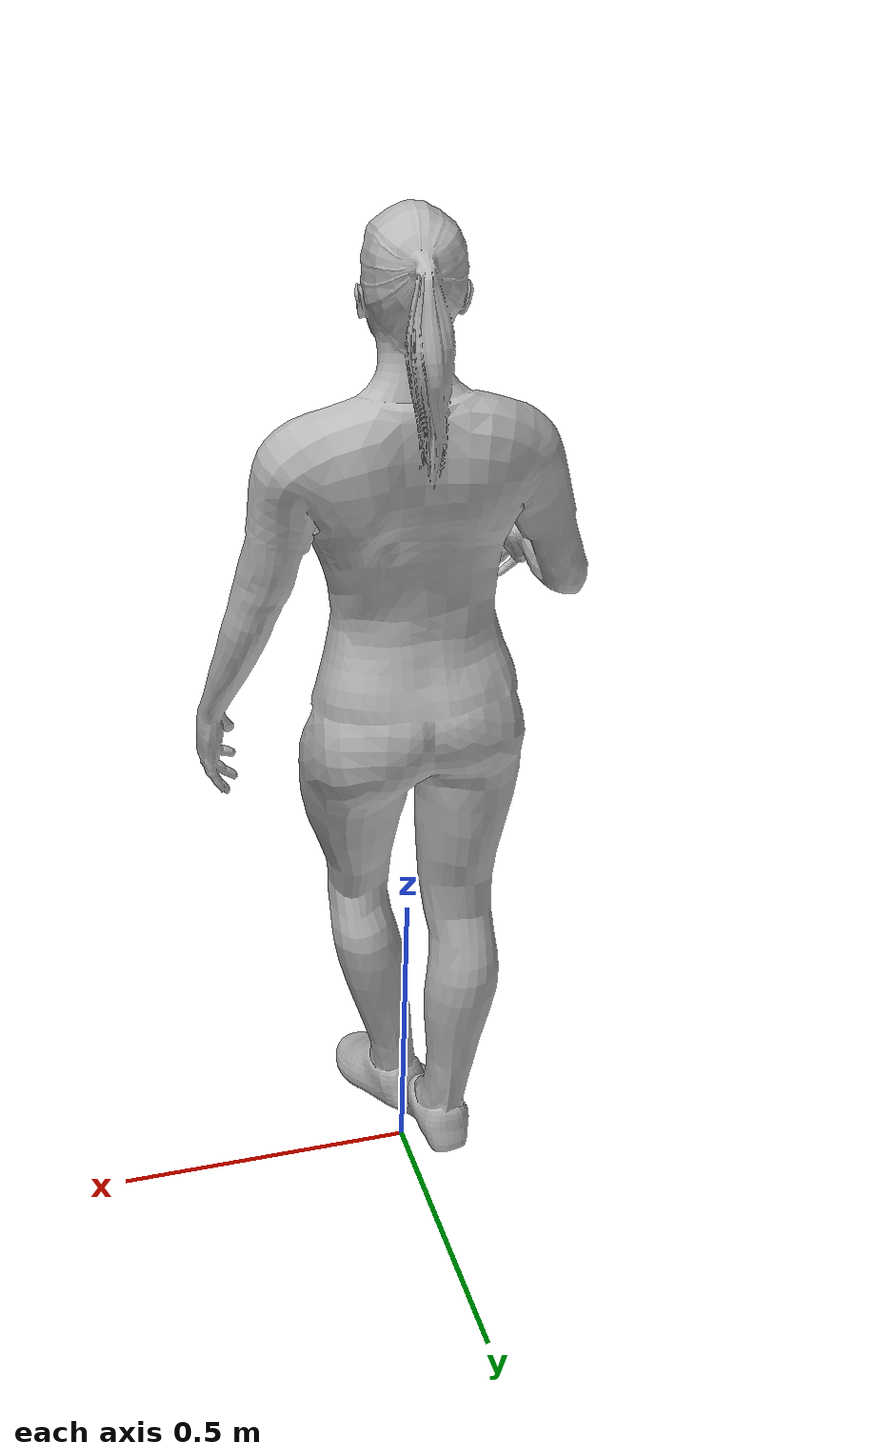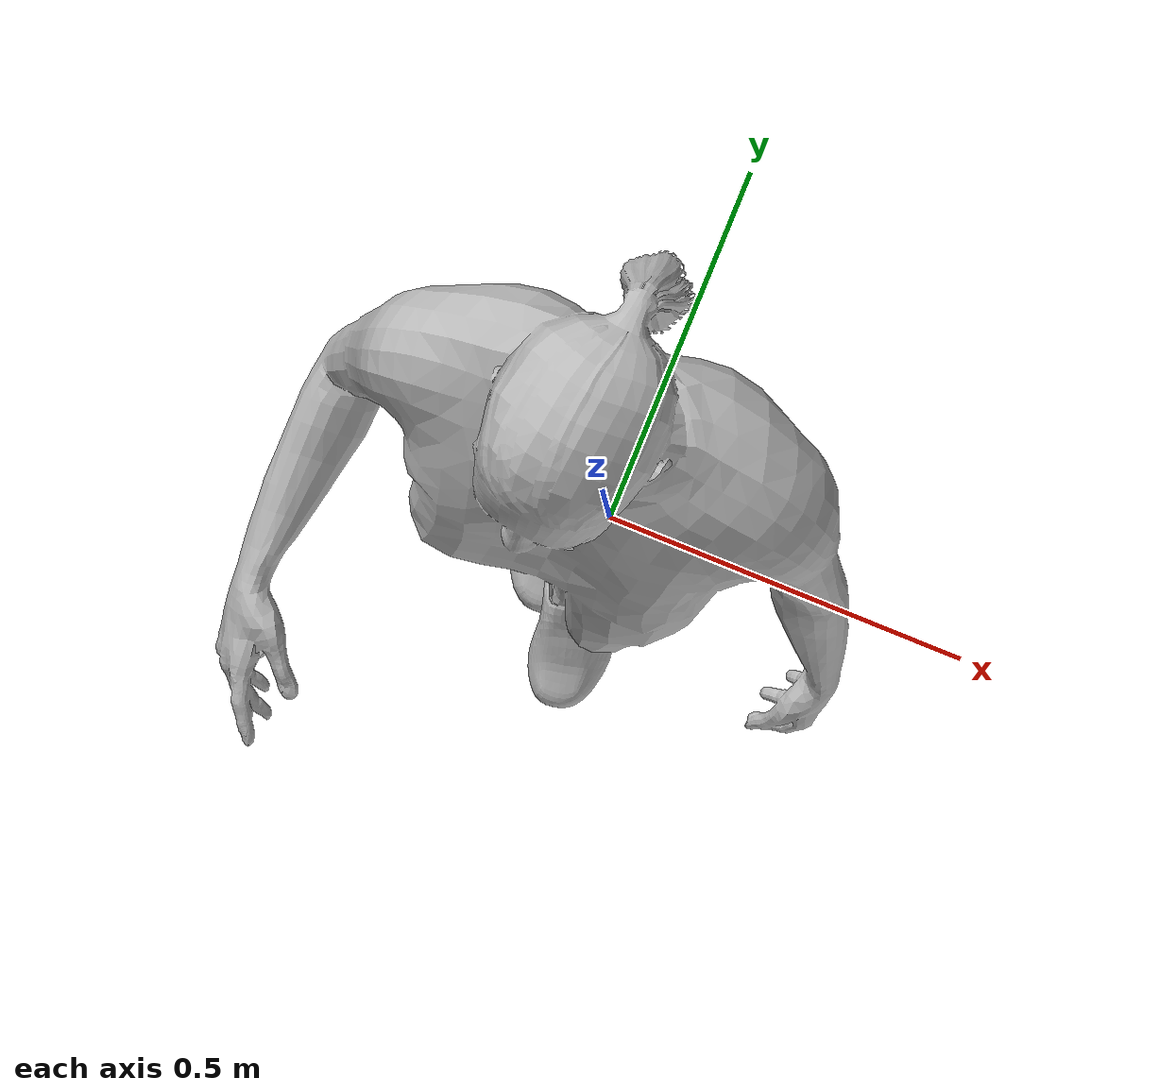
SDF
<?xml version="1.0" ?>
<sdf version="1.5">
    <model name="casual_female_green">
        <static>true</static>
        <link name="link">
            <collision name="box">
                <pose>0 0 0.9 0 0 0</pose>
                <geometry>
                    <box>
                        <size>0.76 0.33 1.77</size>
                    </box>
                </geometry>
            </collision>
            <visual name="visual">
                <pose>0 0 0.02 0.04 0 0</pose>
                <geometry>
                    <mesh>
                        <uri>model://casual_female_green/meshes/casual_female_green.dae</uri>
                    </mesh>
                </geometry>
            </visual>
        </link>
    </model>
</sdf>
